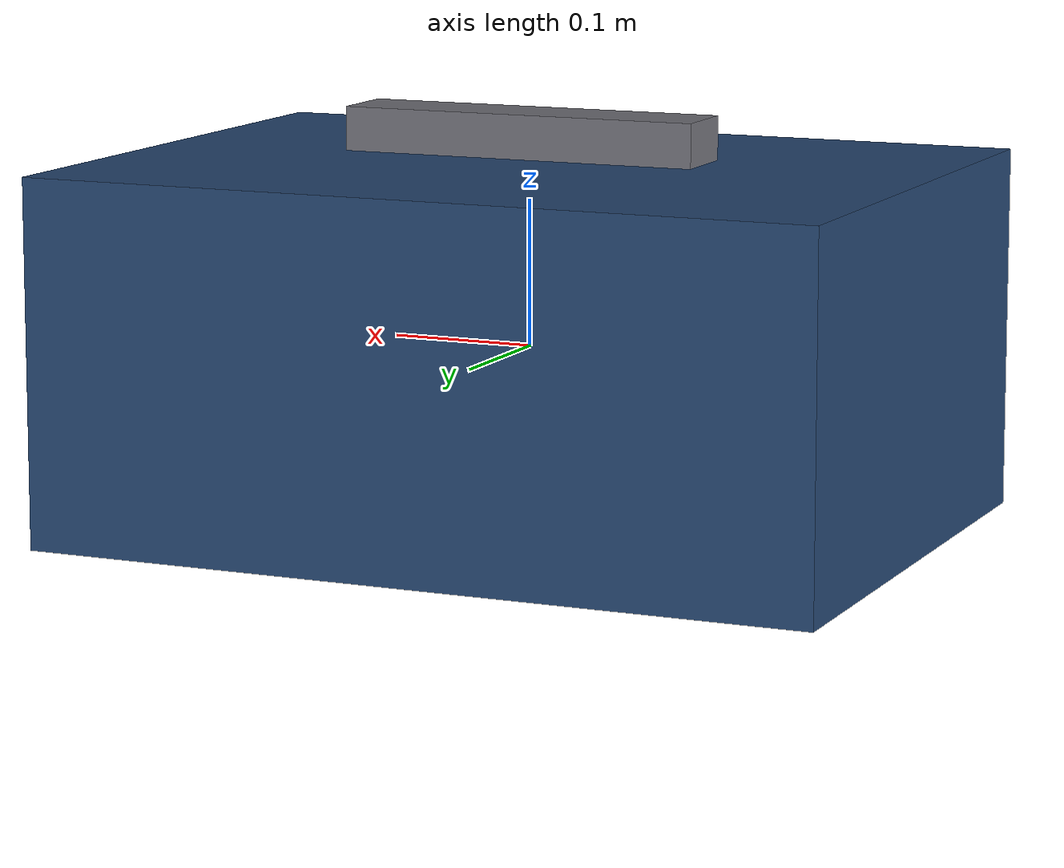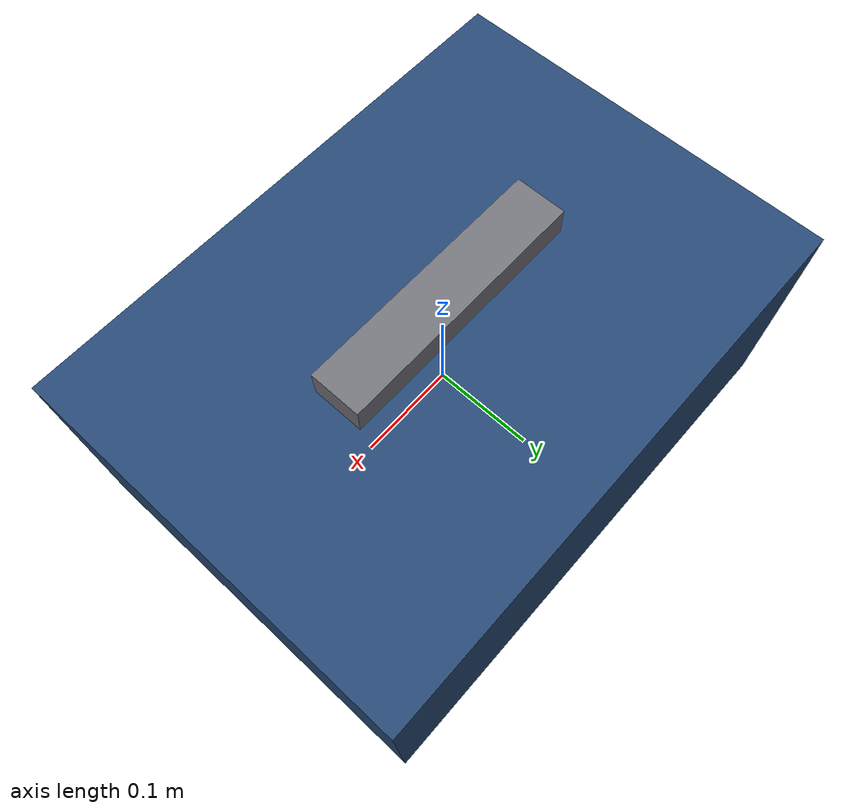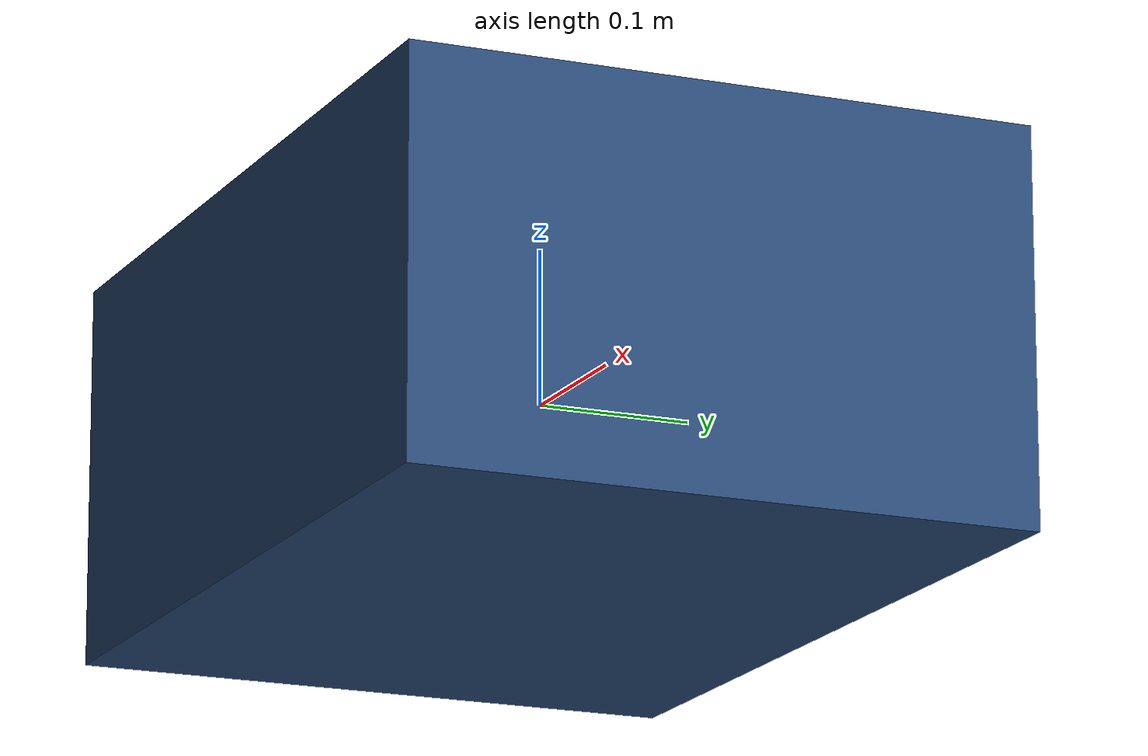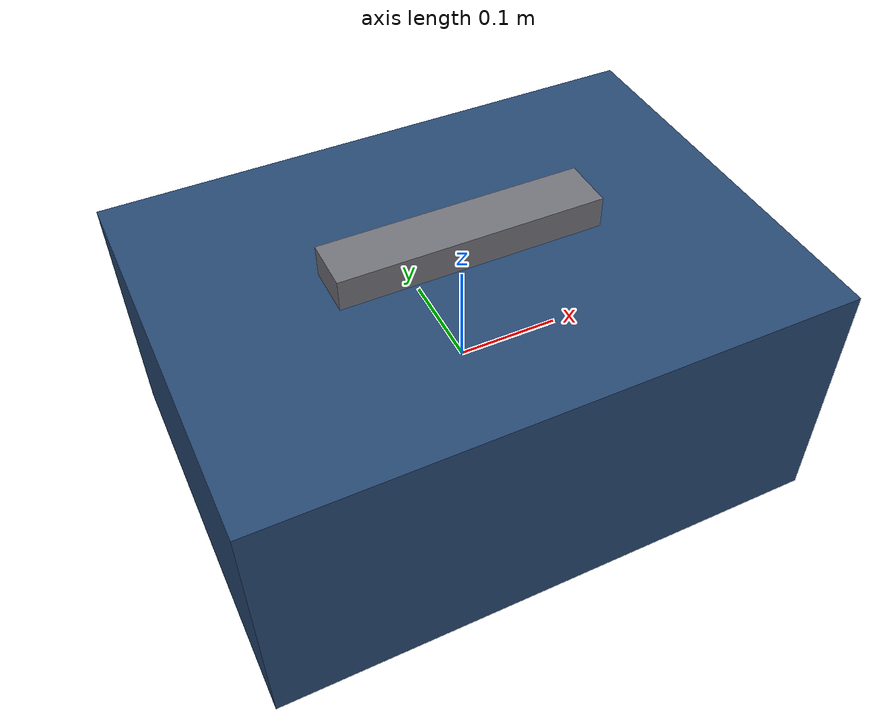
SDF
<?xml version="1.0"?>
<sdf version="1.6">
  <!-- Carry-on: 55 x 40 x 25 cm, 10 kg -->
  <model name="suitcase_carryon">
    <link name="suitcase_link">
      <inertial>
        <mass>10.0</mass>
        <inertia>
          <ixx>0.135</ixx><ixy>0</ixy><ixz>0</ixz>
          <iyy>0.302</iyy><iyz>0</iyz>
          <izz>0.385</izz>
        </inertia>
      </inertial>
      <visual name="body_visual">
        <geometry><box><size>0.55 0.40 0.25</size></box></geometry>
        <material>
          <ambient>0.10 0.18 0.28 1</ambient>
          <diffuse>0.15 0.28 0.45 1</diffuse>
        </material>
      </visual>
      <collision name="body_collision">
        <geometry><box><size>0.55 0.40 0.25</size></box></geometry>
        <surface>
          <friction><ode><mu>0.6</mu><mu2>0.6</mu2></ode></friction>
        </surface>
      </collision>
      <visual name="handle_visual">
        <pose>0 0 0.145 0 0 0</pose>
        <geometry><box><size>0.25 0.05 0.03</size></box></geometry>
        <material>
          <ambient>0.3 0.3 0.32 1</ambient>
          <diffuse>0.45 0.45 0.48 1</diffuse>
        </material>
      </visual>
    </link>
  </model>
</sdf>
